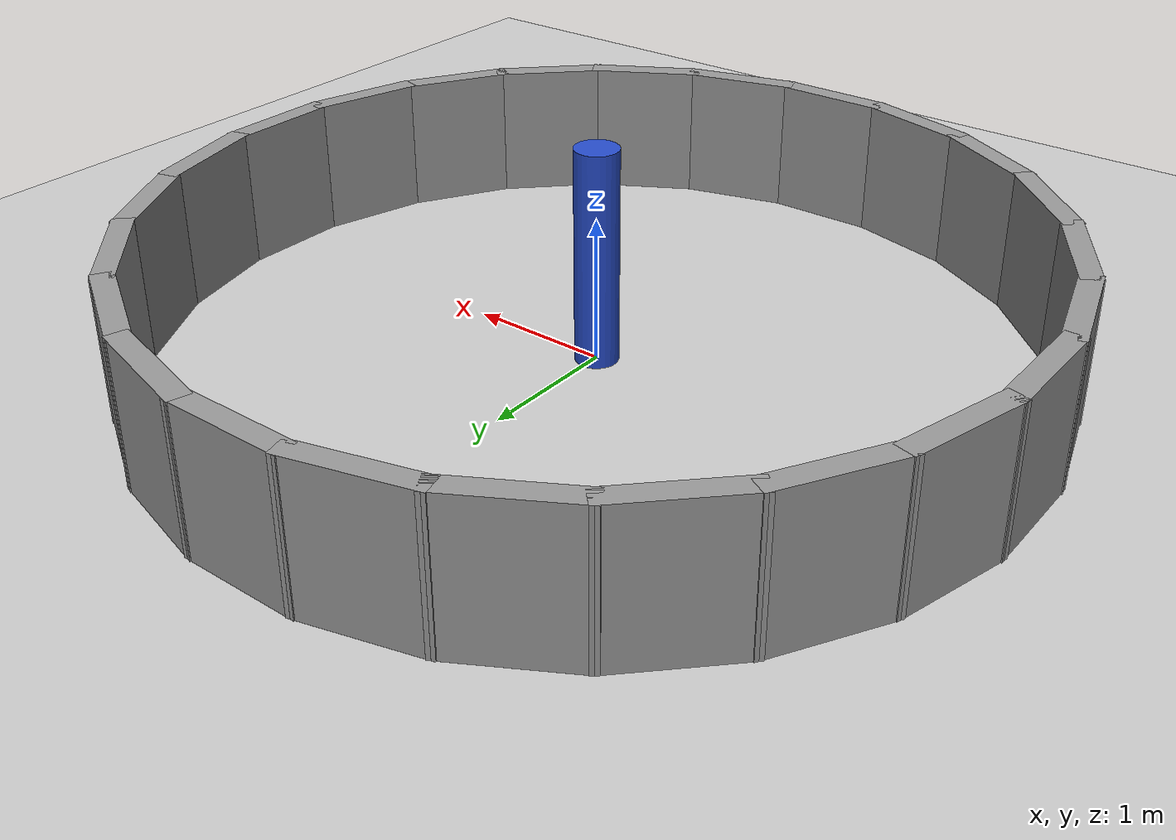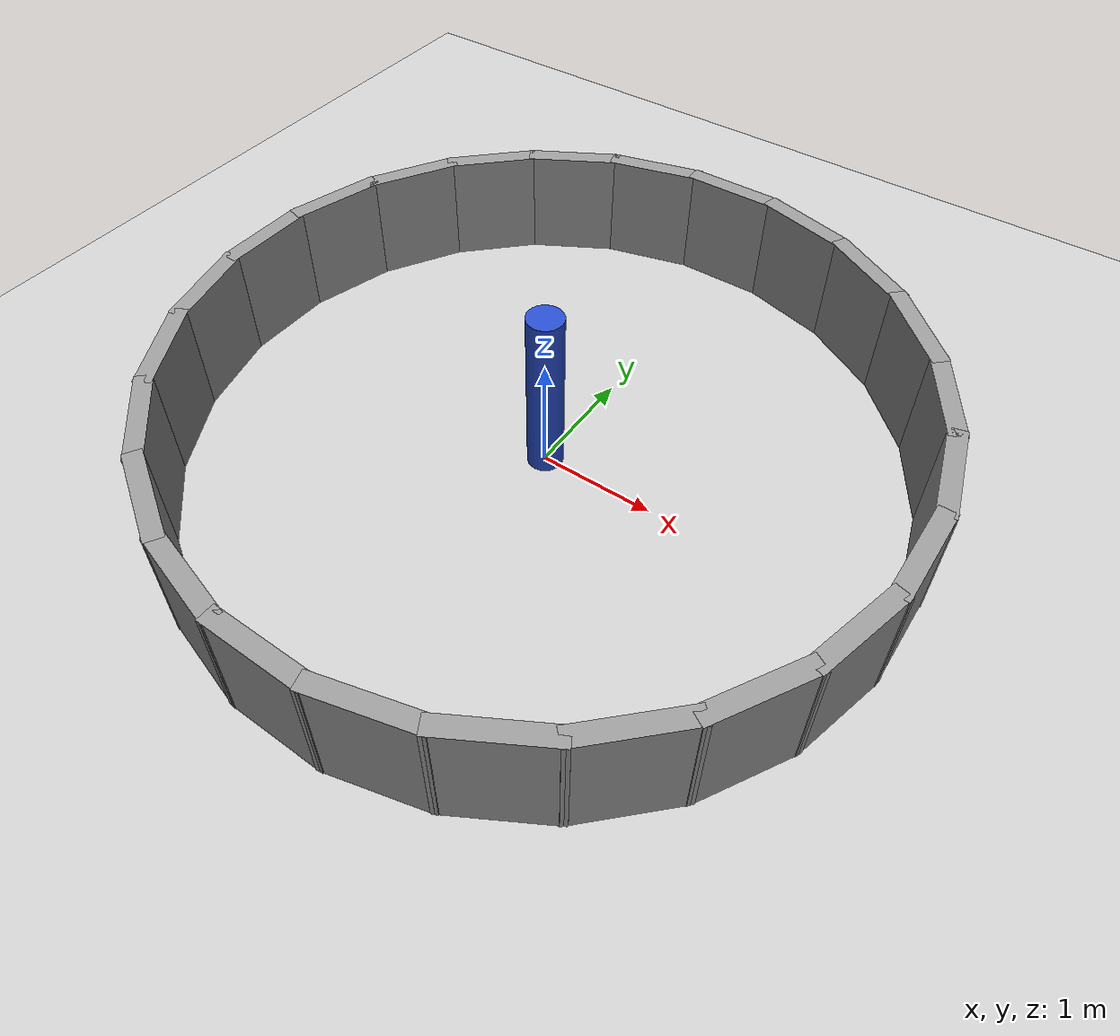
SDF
<?xml version="1.0"?>
<sdf version="1.6">
  <world name="circular_world">
    <include><uri>model://sun</uri></include>
    <include><uri>model://ground_plane</uri></include>
    <plugin name="gazebo_ros_state" filename="libgazebo_ros_state.so">
    <ros>
        <namespace>/gazebo</namespace>
      </ros>
      <update_rate>120.0</update_rate>
    </plugin>

    <model name="center_pole">
      <static>true</static>
      <pose>0 0 0.75 0 0 0</pose>
      <link name="link">
        <collision name="collision">
          <geometry><cylinder><radius>0.15</radius><length>1.5</length></cylinder></geometry>
        </collision>
        <visual name="visual">
          <geometry><cylinder><radius>0.15</radius><length>1.5</length></cylinder></geometry>
          <material><script><name>Gazebo/Blue</name></script></material>
        </visual>
      </link>
    </model>

    <model name="wall_0">
      <static>true</static>
      <pose>3.0 0.0 0.5 0 0 0.0</pose>
      <link name="link">
        <collision name="collision">
          <geometry><box><size>0.15 0.864914985524375 1.0</size></box></geometry>
        </collision>
        <visual name="visual">
          <geometry><box><size>0.15 0.864914985524375 1.0</size></box></geometry>
          <material><script><name>Gazebo/Grey</name></script></material>
        </visual>
      </link>
    </model>
    <model name="wall_1">
      <static>true</static>
      <pose>2.897777478867205 0.7764571353075622 0.5 0 0 0.2617993877991494</pose>
      <link name="link">
        <collision name="collision">
          <geometry><box><size>0.15 0.864914985524375 1.0</size></box></geometry>
        </collision>
        <visual name="visual">
          <geometry><box><size>0.15 0.864914985524375 1.0</size></box></geometry>
          <material><script><name>Gazebo/Grey</name></script></material>
        </visual>
      </link>
    </model>
    <model name="wall_2">
      <static>true</static>
      <pose>2.598076211353316 1.4999999999999998 0.5 0 0 0.5235987755982988</pose>
      <link name="link">
        <collision name="collision">
          <geometry><box><size>0.15 0.864914985524375 1.0</size></box></geometry>
        </collision>
        <visual name="visual">
          <geometry><box><size>0.15 0.864914985524375 1.0</size></box></geometry>
          <material><script><name>Gazebo/Grey</name></script></material>
        </visual>
      </link>
    </model>
    <model name="wall_3">
      <static>true</static>
      <pose>2.121320343559643 2.1213203435596424 0.5 0 0 0.7853981633974483</pose>
      <link name="link">
        <collision name="collision">
          <geometry><box><size>0.15 0.864914985524375 1.0</size></box></geometry>
        </collision>
        <visual name="visual">
          <geometry><box><size>0.15 0.864914985524375 1.0</size></box></geometry>
          <material><script><name>Gazebo/Grey</name></script></material>
        </visual>
      </link>
    </model>
    <model name="wall_4">
      <static>true</static>
      <pose>1.5000000000000004 2.598076211353316 0.5 0 0 1.0471975511965976</pose>
      <link name="link">
        <collision name="collision">
          <geometry><box><size>0.15 0.864914985524375 1.0</size></box></geometry>
        </collision>
        <visual name="visual">
          <geometry><box><size>0.15 0.864914985524375 1.0</size></box></geometry>
          <material><script><name>Gazebo/Grey</name></script></material>
        </visual>
      </link>
    </model>
    <model name="wall_5">
      <static>true</static>
      <pose>0.7764571353075629 2.8977774788672046 0.5 0 0 1.308996938995747</pose>
      <link name="link">
        <collision name="collision">
          <geometry><box><size>0.15 0.864914985524375 1.0</size></box></geometry>
        </collision>
        <visual name="visual">
          <geometry><box><size>0.15 0.864914985524375 1.0</size></box></geometry>
          <material><script><name>Gazebo/Grey</name></script></material>
        </visual>
      </link>
    </model>
    <model name="wall_6">
      <static>true</static>
      <pose>1.8369701987210297e-16 3.0 0.5 0 0 1.5707963267948966</pose>
      <link name="link">
        <collision name="collision">
          <geometry><box><size>0.15 0.864914985524375 1.0</size></box></geometry>
        </collision>
        <visual name="visual">
          <geometry><box><size>0.15 0.864914985524375 1.0</size></box></geometry>
          <material><script><name>Gazebo/Grey</name></script></material>
        </visual>
      </link>
    </model>
    <model name="wall_7">
      <static>true</static>
      <pose>-0.7764571353075619 2.897777478867205 0.5 0 0 1.832595714594046</pose>
      <link name="link">
        <collision name="collision">
          <geometry><box><size>0.15 0.864914985524375 1.0</size></box></geometry>
        </collision>
        <visual name="visual">
          <geometry><box><size>0.15 0.864914985524375 1.0</size></box></geometry>
          <material><script><name>Gazebo/Grey</name></script></material>
        </visual>
      </link>
    </model>
    <model name="wall_8">
      <static>true</static>
      <pose>-1.4999999999999993 2.598076211353316 0.5 0 0 2.0943951023931953</pose>
      <link name="link">
        <collision name="collision">
          <geometry><box><size>0.15 0.864914985524375 1.0</size></box></geometry>
        </collision>
        <visual name="visual">
          <geometry><box><size>0.15 0.864914985524375 1.0</size></box></geometry>
          <material><script><name>Gazebo/Grey</name></script></material>
        </visual>
      </link>
    </model>
    <model name="wall_9">
      <static>true</static>
      <pose>-2.1213203435596424 2.121320343559643 0.5 0 0 2.356194490192345</pose>
      <link name="link">
        <collision name="collision">
          <geometry><box><size>0.15 0.864914985524375 1.0</size></box></geometry>
        </collision>
        <visual name="visual">
          <geometry><box><size>0.15 0.864914985524375 1.0</size></box></geometry>
          <material><script><name>Gazebo/Grey</name></script></material>
        </visual>
      </link>
    </model>
    <model name="wall_10">
      <static>true</static>
      <pose>-2.5980762113533156 1.5000000000000009 0.5 0 0 2.617993877991494</pose>
      <link name="link">
        <collision name="collision">
          <geometry><box><size>0.15 0.864914985524375 1.0</size></box></geometry>
        </collision>
        <visual name="visual">
          <geometry><box><size>0.15 0.864914985524375 1.0</size></box></geometry>
          <material><script><name>Gazebo/Grey</name></script></material>
        </visual>
      </link>
    </model>
    <model name="wall_11">
      <static>true</static>
      <pose>-2.8977774788672046 0.7764571353075631 0.5 0 0 2.8797932657906435</pose>
      <link name="link">
        <collision name="collision">
          <geometry><box><size>0.15 0.864914985524375 1.0</size></box></geometry>
        </collision>
        <visual name="visual">
          <geometry><box><size>0.15 0.864914985524375 1.0</size></box></geometry>
          <material><script><name>Gazebo/Grey</name></script></material>
        </visual>
      </link>
    </model>
    <model name="wall_12">
      <static>true</static>
      <pose>-3.0 3.6739403974420594e-16 0.5 0 0 3.141592653589793</pose>
      <link name="link">
        <collision name="collision">
          <geometry><box><size>0.15 0.864914985524375 1.0</size></box></geometry>
        </collision>
        <visual name="visual">
          <geometry><box><size>0.15 0.864914985524375 1.0</size></box></geometry>
          <material><script><name>Gazebo/Grey</name></script></material>
        </visual>
      </link>
    </model>
    <model name="wall_13">
      <static>true</static>
      <pose>-2.897777478867205 -0.7764571353075611 0.5 0 0 3.4033920413889422</pose>
      <link name="link">
        <collision name="collision">
          <geometry><box><size>0.15 0.864914985524375 1.0</size></box></geometry>
        </collision>
        <visual name="visual">
          <geometry><box><size>0.15 0.864914985524375 1.0</size></box></geometry>
          <material><script><name>Gazebo/Grey</name></script></material>
        </visual>
      </link>
    </model>
    <model name="wall_14">
      <static>true</static>
      <pose>-2.5980762113533165 -1.4999999999999991 0.5 0 0 3.665191429188092</pose>
      <link name="link">
        <collision name="collision">
          <geometry><box><size>0.15 0.864914985524375 1.0</size></box></geometry>
        </collision>
        <visual name="visual">
          <geometry><box><size>0.15 0.864914985524375 1.0</size></box></geometry>
          <material><script><name>Gazebo/Grey</name></script></material>
        </visual>
      </link>
    </model>
    <model name="wall_15">
      <static>true</static>
      <pose>-2.1213203435596437 -2.1213203435596415 0.5 0 0 3.926990816987241</pose>
      <link name="link">
        <collision name="collision">
          <geometry><box><size>0.15 0.864914985524375 1.0</size></box></geometry>
        </collision>
        <visual name="visual">
          <geometry><box><size>0.15 0.864914985524375 1.0</size></box></geometry>
          <material><script><name>Gazebo/Grey</name></script></material>
        </visual>
      </link>
    </model>
    <model name="wall_16">
      <static>true</static>
      <pose>-1.5000000000000013 -2.598076211353315 0.5 0 0 4.1887902047863905</pose>
      <link name="link">
        <collision name="collision">
          <geometry><box><size>0.15 0.864914985524375 1.0</size></box></geometry>
        </collision>
        <visual name="visual">
          <geometry><box><size>0.15 0.864914985524375 1.0</size></box></geometry>
          <material><script><name>Gazebo/Grey</name></script></material>
        </visual>
      </link>
    </model>
    <model name="wall_17">
      <static>true</static>
      <pose>-0.7764571353075645 -2.897777478867204 0.5 0 0 4.45058959258554</pose>
      <link name="link">
        <collision name="collision">
          <geometry><box><size>0.15 0.864914985524375 1.0</size></box></geometry>
        </collision>
        <visual name="visual">
          <geometry><box><size>0.15 0.864914985524375 1.0</size></box></geometry>
          <material><script><name>Gazebo/Grey</name></script></material>
        </visual>
      </link>
    </model>
    <model name="wall_18">
      <static>true</static>
      <pose>-5.51091059616309e-16 -3.0 0.5 0 0 4.71238898038469</pose>
      <link name="link">
        <collision name="collision">
          <geometry><box><size>0.15 0.864914985524375 1.0</size></box></geometry>
        </collision>
        <visual name="visual">
          <geometry><box><size>0.15 0.864914985524375 1.0</size></box></geometry>
          <material><script><name>Gazebo/Grey</name></script></material>
        </visual>
      </link>
    </model>
    <model name="wall_19">
      <static>true</static>
      <pose>0.7764571353075609 -2.897777478867205 0.5 0 0 4.974188368183839</pose>
      <link name="link">
        <collision name="collision">
          <geometry><box><size>0.15 0.864914985524375 1.0</size></box></geometry>
        </collision>
        <visual name="visual">
          <geometry><box><size>0.15 0.864914985524375 1.0</size></box></geometry>
          <material><script><name>Gazebo/Grey</name></script></material>
        </visual>
      </link>
    </model>
    <model name="wall_20">
      <static>true</static>
      <pose>1.499999999999998 -2.598076211353317 0.5 0 0 5.235987755982988</pose>
      <link name="link">
        <collision name="collision">
          <geometry><box><size>0.15 0.864914985524375 1.0</size></box></geometry>
        </collision>
        <visual name="visual">
          <geometry><box><size>0.15 0.864914985524375 1.0</size></box></geometry>
          <material><script><name>Gazebo/Grey</name></script></material>
        </visual>
      </link>
    </model>
    <model name="wall_21">
      <static>true</static>
      <pose>2.121320343559642 -2.121320343559643 0.5 0 0 5.497787143782138</pose>
      <link name="link">
        <collision name="collision">
          <geometry><box><size>0.15 0.864914985524375 1.0</size></box></geometry>
        </collision>
        <visual name="visual">
          <geometry><box><size>0.15 0.864914985524375 1.0</size></box></geometry>
          <material><script><name>Gazebo/Grey</name></script></material>
        </visual>
      </link>
    </model>
    <model name="wall_22">
      <static>true</static>
      <pose>2.598076211353315 -1.5000000000000013 0.5 0 0 5.759586531581287</pose>
      <link name="link">
        <collision name="collision">
          <geometry><box><size>0.15 0.864914985524375 1.0</size></box></geometry>
        </collision>
        <visual name="visual">
          <geometry><box><size>0.15 0.864914985524375 1.0</size></box></geometry>
          <material><script><name>Gazebo/Grey</name></script></material>
        </visual>
      </link>
    </model>
    <model name="wall_23">
      <static>true</static>
      <pose>2.897777478867204 -0.7764571353075647 0.5 0 0 6.021385919380436</pose>
      <link name="link">
        <collision name="collision">
          <geometry><box><size>0.15 0.864914985524375 1.0</size></box></geometry>
        </collision>
        <visual name="visual">
          <geometry><box><size>0.15 0.864914985524375 1.0</size></box></geometry>
          <material><script><name>Gazebo/Grey</name></script></material>
        </visual>
      </link>
    </model>
  </world>
</sdf>
